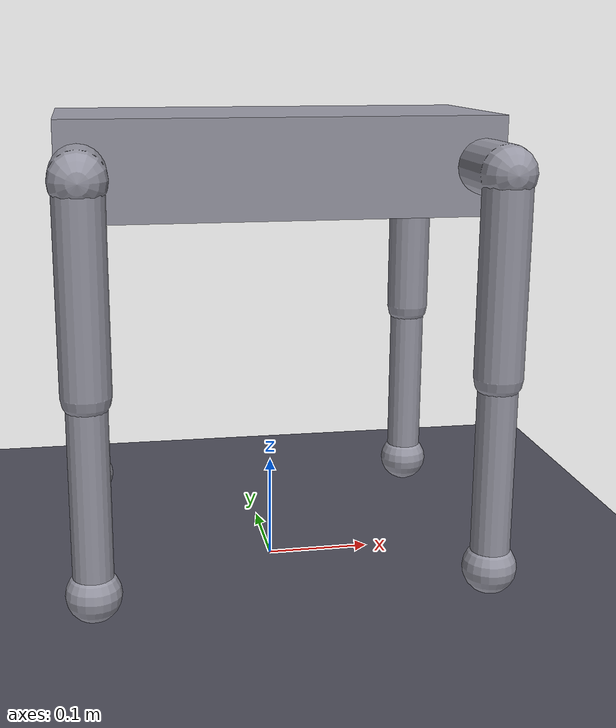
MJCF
<mujoco model="quad12">
  <compiler angle="radian"/>
  <option timestep="0.005" gravity="0 0 -9.81" integrator="RK4"/>

  <default>
    <joint armature="0.01" damping="0.2" limited="true" range="-3.14 3.14"/>
    <geom contype="1" conaffinity="1" friction="1.0 0.1 0.1" rgba="0.6 0.6 0.65 1"/>
    <motor ctrllimited="false"/>
  </default>

  <worldbody>
    <light name="top" pos="0 0 2"/>
    <geom name="floor" type="plane" size="0 0 0.1" pos="0 0 0" rgba="0.3 0.3 0.35 1"
          contype="1" conaffinity="1" friction="1.0 0.1 0.1"/>

    <body name="trunk" pos="0 0 0.40">
      <freejoint name="root"/>
      <geom name="trunk" type="box" size="0.20 0.09 0.045" mass="6.0"/>

      <!-- ============================ FL (front-left) ============================ -->
      <body name="FL_hip" pos="0.18 0.09 0">
        <joint name="FL_hip" axis="1 0 0"/>
        <geom type="capsule" fromto="0 0 0 0 0.06 0" size="0.025" mass="0.6"/>
        <body name="FL_thigh" pos="0 0.06 0">
          <joint name="FL_thigh" axis="0 1 0"/>
          <geom type="capsule" fromto="0 0 0 0 0 -0.18" size="0.022" mass="0.9"/>
          <body name="FL_calf" pos="0 0 -0.18">
            <joint name="FL_calf" axis="0 1 0"/>
            <geom type="capsule" fromto="0 0 0 0 0 -0.18" size="0.018" mass="0.4"/>
            <geom name="FL_foot" type="sphere" pos="0 0 -0.18" size="0.025" mass="0.05"/>
          </body>
        </body>
      </body>

      <!-- ============================ FR (front-right) =========================== -->
      <body name="FR_hip" pos="0.18 -0.09 0">
        <joint name="FR_hip" axis="1 0 0"/>
        <geom type="capsule" fromto="0 0 0 0 -0.06 0" size="0.025" mass="0.6"/>
        <body name="FR_thigh" pos="0 -0.06 0">
          <joint name="FR_thigh" axis="0 1 0"/>
          <geom type="capsule" fromto="0 0 0 0 0 -0.18" size="0.022" mass="0.9"/>
          <body name="FR_calf" pos="0 0 -0.18">
            <joint name="FR_calf" axis="0 1 0"/>
            <geom type="capsule" fromto="0 0 0 0 0 -0.18" size="0.018" mass="0.4"/>
            <geom name="FR_foot" type="sphere" pos="0 0 -0.18" size="0.025" mass="0.05"/>
          </body>
        </body>
      </body>

      <!-- ============================ RL (rear-left) ============================= -->
      <body name="RL_hip" pos="-0.18 0.09 0">
        <joint name="RL_hip" axis="1 0 0"/>
        <geom type="capsule" fromto="0 0 0 0 0.06 0" size="0.025" mass="0.6"/>
        <body name="RL_thigh" pos="0 0.06 0">
          <joint name="RL_thigh" axis="0 1 0"/>
          <geom type="capsule" fromto="0 0 0 0 0 -0.18" size="0.022" mass="0.9"/>
          <body name="RL_calf" pos="0 0 -0.18">
            <joint name="RL_calf" axis="0 1 0"/>
            <geom type="capsule" fromto="0 0 0 0 0 -0.18" size="0.018" mass="0.4"/>
            <geom name="RL_foot" type="sphere" pos="0 0 -0.18" size="0.025" mass="0.05"/>
          </body>
        </body>
      </body>

      <!-- ============================ RR (rear-right) ============================ -->
      <body name="RR_hip" pos="-0.18 -0.09 0">
        <joint name="RR_hip" axis="1 0 0"/>
        <geom type="capsule" fromto="0 0 0 0 -0.06 0" size="0.025" mass="0.6"/>
        <body name="RR_thigh" pos="0 -0.06 0">
          <joint name="RR_thigh" axis="0 1 0"/>
          <geom type="capsule" fromto="0 0 0 0 0 -0.18" size="0.022" mass="0.9"/>
          <body name="RR_calf" pos="0 0 -0.18">
            <joint name="RR_calf" axis="0 1 0"/>
            <geom type="capsule" fromto="0 0 0 0 0 -0.18" size="0.018" mass="0.4"/>
            <geom name="RR_foot" type="sphere" pos="0 0 -0.18" size="0.025" mass="0.05"/>
          </body>
        </body>
      </body>
    </body>
  </worldbody>

  <actuator>
    <motor name="FL_hip"   joint="FL_hip"   gear="1"/>
    <motor name="FL_thigh" joint="FL_thigh" gear="1"/>
    <motor name="FL_calf"  joint="FL_calf"  gear="1"/>
    <motor name="FR_hip"   joint="FR_hip"   gear="1"/>
    <motor name="FR_thigh" joint="FR_thigh" gear="1"/>
    <motor name="FR_calf"  joint="FR_calf"  gear="1"/>
    <motor name="RL_hip"   joint="RL_hip"   gear="1"/>
    <motor name="RL_thigh" joint="RL_thigh" gear="1"/>
    <motor name="RL_calf"  joint="RL_calf"  gear="1"/>
    <motor name="RR_hip"   joint="RR_hip"   gear="1"/>
    <motor name="RR_thigh" joint="RR_thigh" gear="1"/>
    <motor name="RR_calf"  joint="RR_calf"  gear="1"/>
  </actuator>
</mujoco>
